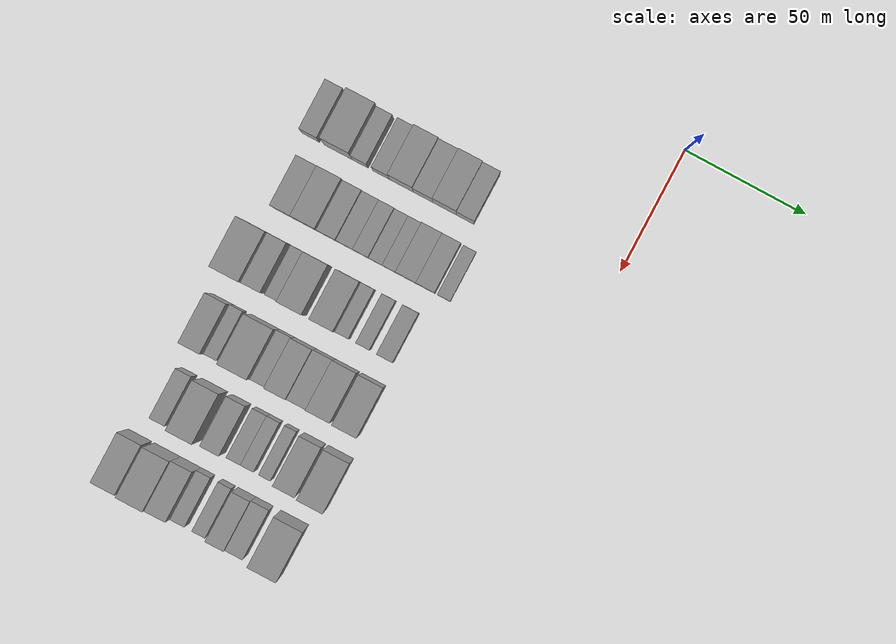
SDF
<sdf version="1.6">
 <world name="default">
  <model name="building_42">
   <static>1</static>
   <pose>50.0000 -122.4962 0 0.000000 0.000000 0.000000</pose>
   <link name="link">
    <pose>0 0 7.50 0 0 0</pose>
    <collision name="collision"><geometry><box><size>20.0000 7.1534 15.0000</size></box></geometry></collision>
    <visual name="visual">
     <cast_shadows>0</cast_shadows>
     <geometry><box><size>20.0000 7.1534 15.0000</size></box></geometry>
     <material>
      <script>
       <uri>model://grey_wall/materials/scripts</uri>
       <uri>model://grey_wall/materials/textures</uri>
       <name>vrc/grey_wall</name>
      </script>
     </material>
    </visual>
   </link>
  </model>
  <model name="building_43">
   <static>1</static>
   <pose>50.0000 -111.1496 0 0.000000 0.000000 0.000000</pose>
   <link name="link">
    <pose>0 0 12.00 0 0 0</pose>
    <collision name="collision"><geometry><box><size>20.0000 11.5397 24.0000</size></box></geometry></collision>
    <visual name="visual">
     <cast_shadows>0</cast_shadows>
     <geometry><box><size>20.0000 11.5397 24.0000</size></box></geometry>
     <material>
      <script>
       <uri>model://grey_wall/materials/scripts</uri>
       <uri>model://grey_wall/materials/textures</uri>
       <name>vrc/grey_wall</name>
      </script>
     </material>
    </visual>
   </link>
  </model>
  <model name="building_44">
   <static>1</static>
   <pose>50.0000 -102.1287 0 0.000000 0.000000 0.000000</pose>
   <link name="link">
    <pose>0 0 7.50 0 0 0</pose>
    <collision name="collision"><geometry><box><size>20.0000 6.5022 15.0000</size></box></geometry></collision>
    <visual name="visual">
     <cast_shadows>0</cast_shadows>
     <geometry><box><size>20.0000 6.5022 15.0000</size></box></geometry>
     <material>
      <script>
       <uri>model://grey_wall/materials/scripts</uri>
       <uri>model://grey_wall/materials/textures</uri>
       <name>vrc/grey_wall</name>
      </script>
     </material>
    </visual>
   </link>
  </model>
  <model name="building_45">
   <static>1</static>
   <pose>50.0000 -93.5026 0 0.000000 0.000000 0.000000</pose>
   <link name="link">
    <pose>0 0 7.50 0 0 0</pose>
    <collision name="collision"><geometry><box><size>20.0000 6.7500 15.0000</size></box></geometry></collision>
    <visual name="visual">
     <cast_shadows>0</cast_shadows>
     <geometry><box><size>20.0000 6.7500 15.0000</size></box></geometry>
     <material>
      <script>
       <uri>model://grey_wall/materials/scripts</uri>
       <uri>model://grey_wall/materials/textures</uri>
       <name>vrc/grey_wall</name>
      </script>
     </material>
    </visual>
   </link>
  </model>
  <model name="building_46">
   <static>1</static>
   <pose>50.0000 -85.1663 0 0.000000 0.000000 0.000000</pose>
   <link name="link">
    <pose>0 0 10.50 0 0 0</pose>
    <collision name="collision"><geometry><box><size>20.0000 9.9225 21.0000</size></box></geometry></collision>
    <visual name="visual">
     <cast_shadows>0</cast_shadows>
     <geometry><box><size>20.0000 9.9225 21.0000</size></box></geometry>
     <material>
      <script>
       <uri>model://grey_wall/materials/scripts</uri>
       <uri>model://grey_wall/materials/textures</uri>
       <name>vrc/grey_wall</name>
      </script>
     </material>
    </visual>
   </link>
  </model>
  <model name="building_47">
   <static>1</static>
   <pose>50.0000 -76.1934 0 0.000000 0.000000 0.000000</pose>
   <link name="link">
    <pose>0 0 9.00 0 0 0</pose>
    <collision name="collision"><geometry><box><size>20.0000 8.0234 18.0000</size></box></geometry></collision>
    <visual name="visual">
     <cast_shadows>0</cast_shadows>
     <geometry><box><size>20.0000 8.0234 18.0000</size></box></geometry>
     <material>
      <script>
       <uri>model://grey_wall/materials/scripts</uri>
       <uri>model://grey_wall/materials/textures</uri>
       <name>vrc/grey_wall</name>
      </script>
     </material>
    </visual>
   </link>
  </model>
  <model name="building_48">
   <static>1</static>
   <pose>50.0000 -67.3247 0 0.000000 0.000000 0.000000</pose>
   <link name="link">
    <pose>0 0 10.50 0 0 0</pose>
    <collision name="collision"><geometry><box><size>20.0000 9.7140 21.0000</size></box></geometry></collision>
    <visual name="visual">
     <cast_shadows>0</cast_shadows>
     <geometry><box><size>20.0000 9.7140 21.0000</size></box></geometry>
     <material>
      <script>
       <uri>model://grey_wall/materials/scripts</uri>
       <uri>model://grey_wall/materials/textures</uri>
       <name>vrc/grey_wall</name>
      </script>
     </material>
    </visual>
   </link>
  </model>
  <model name="building_49">
   <static>1</static>
   <pose>50.0000 -58.8487 0 0.000000 0.000000 0.000000</pose>
   <link name="link">
    <pose>0 0 9.00 0 0 0</pose>
    <collision name="collision"><geometry><box><size>20.0000 7.2380 18.0000</size></box></geometry></collision>
    <visual name="visual">
     <cast_shadows>0</cast_shadows>
     <geometry><box><size>20.0000 7.2380 18.0000</size></box></geometry>
     <material>
      <script>
       <uri>model://grey_wall/materials/scripts</uri>
       <uri>model://grey_wall/materials/textures</uri>
       <name>vrc/grey_wall</name>
      </script>
     </material>
    </visual>
   </link>
  </model>
  <model name="building_156">
   <static>1</static>
   <pose>79.0000 -117.4468 0 0.000000 0.000000 0.000000</pose>
   <link name="link">
    <pose>0 0 10.50 0 0 0</pose>
    <collision name="collision"><geometry><box><size>20.0000 8.5182 21.0000</size></box></geometry></collision>
    <visual name="visual">
     <cast_shadows>0</cast_shadows>
     <geometry><box><size>20.0000 8.5182 21.0000</size></box></geometry>
     <material>
      <script>
       <uri>model://grey_wall/materials/scripts</uri>
       <uri>model://grey_wall/materials/textures</uri>
       <name>vrc/grey_wall</name>
      </script>
     </material>
    </visual>
   </link>
  </model>
  <model name="building_157">
   <static>1</static>
   <pose>79.0000 -108.2829 0 0.000000 0.000000 0.000000</pose>
   <link name="link">
    <pose>0 0 12.00 0 0 0</pose>
    <collision name="collision"><geometry><box><size>20.0000 9.8094 24.0000</size></box></geometry></collision>
    <visual name="visual">
     <cast_shadows>0</cast_shadows>
     <geometry><box><size>20.0000 9.8094 24.0000</size></box></geometry>
     <material>
      <script>
       <uri>model://grey_wall/materials/scripts</uri>
       <uri>model://grey_wall/materials/textures</uri>
       <name>vrc/grey_wall</name>
      </script>
     </material>
    </visual>
   </link>
  </model>
  <model name="building_158">
   <static>1</static>
   <pose>79.0000 -99.5708 0 0.000000 0.000000 0.000000</pose>
   <link name="link">
    <pose>0 0 9.00 0 0 0</pose>
    <collision name="collision"><geometry><box><size>20.0000 7.6148 18.0000</size></box></geometry></collision>
    <visual name="visual">
     <cast_shadows>0</cast_shadows>
     <geometry><box><size>20.0000 7.6148 18.0000</size></box></geometry>
     <material>
      <script>
       <uri>model://grey_wall/materials/scripts</uri>
       <uri>model://grey_wall/materials/textures</uri>
       <name>vrc/grey_wall</name>
      </script>
     </material>
    </visual>
   </link>
  </model>
  <model name="building_159">
   <static>1</static>
   <pose>79.0000 -92.3816 0 0.000000 0.000000 0.000000</pose>
   <link name="link">
    <pose>0 0 7.50 0 0 0</pose>
    <collision name="collision"><geometry><box><size>20.0000 6.7636 15.0000</size></box></geometry></collision>
    <visual name="visual">
     <cast_shadows>0</cast_shadows>
     <geometry><box><size>20.0000 6.7636 15.0000</size></box></geometry>
     <material>
      <script>
       <uri>model://grey_wall/materials/scripts</uri>
       <uri>model://grey_wall/materials/textures</uri>
       <name>vrc/grey_wall</name>
      </script>
     </material>
    </visual>
   </link>
  </model>
  <model name="building_160">
   <static>1</static>
   <pose>79.0000 -85.8796 0 0.000000 0.000000 0.000000</pose>
   <link name="link">
    <pose>0 0 7.50 0 0 0</pose>
    <collision name="collision"><geometry><box><size>20.0000 6.2403 15.0000</size></box></geometry></collision>
    <visual name="visual">
     <cast_shadows>0</cast_shadows>
     <geometry><box><size>20.0000 6.2403 15.0000</size></box></geometry>
     <material>
      <script>
       <uri>model://grey_wall/materials/scripts</uri>
       <uri>model://grey_wall/materials/textures</uri>
       <name>vrc/grey_wall</name>
      </script>
     </material>
    </visual>
   </link>
  </model>
  <model name="building_161">
   <static>1</static>
   <pose>79.0000 -79.9926 0 0.000000 0.000000 0.000000</pose>
   <link name="link">
    <pose>0 0 6.00 0 0 0</pose>
    <collision name="collision"><geometry><box><size>20.0000 5.5337 12.0000</size></box></geometry></collision>
    <visual name="visual">
     <cast_shadows>0</cast_shadows>
     <geometry><box><size>20.0000 5.5337 12.0000</size></box></geometry>
     <material>
      <script>
       <uri>model://grey_wall/materials/scripts</uri>
       <uri>model://grey_wall/materials/textures</uri>
       <name>vrc/grey_wall</name>
      </script>
     </material>
    </visual>
   </link>
  </model>
  <model name="building_162">
   <static>1</static>
   <pose>79.0000 -74.4149 0 0.000000 0.000000 0.000000</pose>
   <link name="link">
    <pose>0 0 6.00 0 0 0</pose>
    <collision name="collision"><geometry><box><size>20.0000 5.6218 12.0000</size></box></geometry></collision>
    <visual name="visual">
     <cast_shadows>0</cast_shadows>
     <geometry><box><size>20.0000 5.6218 12.0000</size></box></geometry>
     <material>
      <script>
       <uri>model://grey_wall/materials/scripts</uri>
       <uri>model://grey_wall/materials/textures</uri>
       <name>vrc/grey_wall</name>
      </script>
     </material>
    </visual>
   </link>
  </model>
  <model name="building_163">
   <static>1</static>
   <pose>79.0000 -67.4967 0 0.000000 0.000000 0.000000</pose>
   <link name="link">
    <pose>0 0 9.00 0 0 0</pose>
    <collision name="collision"><geometry><box><size>20.0000 8.2145 18.0000</size></box></geometry></collision>
    <visual name="visual">
     <cast_shadows>0</cast_shadows>
     <geometry><box><size>20.0000 8.2145 18.0000</size></box></geometry>
     <material>
      <script>
       <uri>model://grey_wall/materials/scripts</uri>
       <uri>model://grey_wall/materials/textures</uri>
       <name>vrc/grey_wall</name>
      </script>
     </material>
    </visual>
   </link>
  </model>
  <model name="building_164">
   <static>1</static>
   <pose>79.0000 -59.6113 0 0.000000 0.000000 0.000000</pose>
   <link name="link">
    <pose>0 0 9.00 0 0 0</pose>
    <collision name="collision"><geometry><box><size>20.0000 7.5562 18.0000</size></box></geometry></collision>
    <visual name="visual">
     <cast_shadows>0</cast_shadows>
     <geometry><box><size>20.0000 7.5562 18.0000</size></box></geometry>
     <material>
      <script>
       <uri>model://grey_wall/materials/scripts</uri>
       <uri>model://grey_wall/materials/textures</uri>
       <name>vrc/grey_wall</name>
      </script>
     </material>
    </visual>
   </link>
  </model>
  <model name="building_165">
   <static>1</static>
   <pose>79.0000 -52.2043 0 0.000000 0.000000 0.000000</pose>
   <link name="link">
    <pose>0 0 6.00 0 0 0</pose>
    <collision name="collision"><geometry><box><size>20.0000 5.2579 12.0000</size></box></geometry></collision>
    <visual name="visual">
     <cast_shadows>0</cast_shadows>
     <geometry><box><size>20.0000 5.2579 12.0000</size></box></geometry>
     <material>
      <script>
       <uri>model://grey_wall/materials/scripts</uri>
       <uri>model://grey_wall/materials/textures</uri>
       <name>vrc/grey_wall</name>
      </script>
     </material>
    </visual>
   </link>
  </model>
  <model name="building_273">
   <static>1</static>
   <pose>108.0000 -124.1123 0 0.000000 0.000000 0.000000</pose>
   <link name="link">
    <pose>0 0 12.00 0 0 0</pose>
    <collision name="collision"><geometry><box><size>20.0000 11.6962 24.0000</size></box></geometry></collision>
    <visual name="visual">
     <cast_shadows>0</cast_shadows>
     <geometry><box><size>20.0000 11.6962 24.0000</size></box></geometry>
     <material>
      <script>
       <uri>model://grey_wall/materials/scripts</uri>
       <uri>model://grey_wall/materials/textures</uri>
       <name>vrc/grey_wall</name>
      </script>
     </material>
    </visual>
   </link>
  </model>
  <model name="building_274">
   <static>1</static>
   <pose>108.0000 -114.3549 0 0.000000 0.000000 0.000000</pose>
   <link name="link">
    <pose>0 0 9.00 0 0 0</pose>
    <collision name="collision"><geometry><box><size>20.0000 7.8185 18.0000</size></box></geometry></collision>
    <visual name="visual">
     <cast_shadows>0</cast_shadows>
     <geometry><box><size>20.0000 7.8185 18.0000</size></box></geometry>
     <material>
      <script>
       <uri>model://grey_wall/materials/scripts</uri>
       <uri>model://grey_wall/materials/textures</uri>
       <name>vrc/grey_wall</name>
      </script>
     </material>
    </visual>
   </link>
  </model>
  <model name="building_275">
   <static>1</static>
   <pose>108.0000 -106.5390 0 0.000000 0.000000 0.000000</pose>
   <link name="link">
    <pose>0 0 6.00 0 0 0</pose>
    <collision name="collision"><geometry><box><size>20.0000 5.8134 12.0000</size></box></geometry></collision>
    <visual name="visual">
     <cast_shadows>0</cast_shadows>
     <geometry><box><size>20.0000 5.8134 12.0000</size></box></geometry>
     <material>
      <script>
       <uri>model://grey_wall/materials/scripts</uri>
       <uri>model://grey_wall/materials/textures</uri>
       <name>vrc/grey_wall</name>
      </script>
     </material>
    </visual>
   </link>
  </model>
  <model name="building_276">
   <static>1</static>
   <pose>108.0000 -98.6018 0 0.000000 0.000000 0.000000</pose>
   <link name="link">
    <pose>0 0 10.50 0 0 0</pose>
    <collision name="collision"><geometry><box><size>20.0000 10.0610 21.0000</size></box></geometry></collision>
    <visual name="visual">
     <cast_shadows>0</cast_shadows>
     <geometry><box><size>20.0000 10.0610 21.0000</size></box></geometry>
     <material>
      <script>
       <uri>model://grey_wall/materials/scripts</uri>
       <uri>model://grey_wall/materials/textures</uri>
       <name>vrc/grey_wall</name>
      </script>
     </material>
    </visual>
   </link>
  </model>
  <model name="building_277">
   <static>1</static>
   <pose>108.0000 -85.7840 0 0.000000 0.000000 0.000000</pose>
   <link name="link">
    <pose>0 0 10.50 0 0 0</pose>
    <collision name="collision"><geometry><box><size>20.0000 9.5745 21.0000</size></box></geometry></collision>
    <visual name="visual">
     <cast_shadows>0</cast_shadows>
     <geometry><box><size>20.0000 9.5745 21.0000</size></box></geometry>
     <material>
      <script>
       <uri>model://grey_wall/materials/scripts</uri>
       <uri>model://grey_wall/materials/textures</uri>
       <name>vrc/grey_wall</name>
      </script>
     </material>
    </visual>
   </link>
  </model>
  <model name="building_278">
   <static>1</static>
   <pose>108.0000 -78.2578 0 0.000000 0.000000 0.000000</pose>
   <link name="link">
    <pose>0 0 6.00 0 0 0</pose>
    <collision name="collision"><geometry><box><size>20.0000 5.4779 12.0000</size></box></geometry></collision>
    <visual name="visual">
     <cast_shadows>0</cast_shadows>
     <geometry><box><size>20.0000 5.4779 12.0000</size></box></geometry>
     <material>
      <script>
       <uri>model://grey_wall/materials/scripts</uri>
       <uri>model://grey_wall/materials/textures</uri>
       <name>vrc/grey_wall</name>
      </script>
     </material>
    </visual>
   </link>
  </model>
  <model name="building_279">
   <static>1</static>
   <pose>108.0000 -69.7310 0 0.000000 0.000000 0.000000</pose>
   <link name="link">
    <pose>0 0 6.00 0 0 0</pose>
    <collision name="collision"><geometry><box><size>20.0000 5.5758 12.0000</size></box></geometry></collision>
    <visual name="visual">
     <cast_shadows>0</cast_shadows>
     <geometry><box><size>20.0000 5.5758 12.0000</size></box></geometry>
     <material>
      <script>
       <uri>model://grey_wall/materials/scripts</uri>
       <uri>model://grey_wall/materials/textures</uri>
       <name>vrc/grey_wall</name>
      </script>
     </material>
    </visual>
   </link>
  </model>
  <model name="building_280">
   <static>1</static>
   <pose>108.0000 -60.6845 0 0.000000 0.000000 0.000000</pose>
   <link name="link">
    <pose>0 0 7.50 0 0 0</pose>
    <collision name="collision"><geometry><box><size>20.0000 6.5170 15.0000</size></box></geometry></collision>
    <visual name="visual">
     <cast_shadows>0</cast_shadows>
     <geometry><box><size>20.0000 6.5170 15.0000</size></box></geometry>
     <material>
      <script>
       <uri>model://grey_wall/materials/scripts</uri>
       <uri>model://grey_wall/materials/textures</uri>
       <name>vrc/grey_wall</name>
      </script>
     </material>
    </visual>
   </link>
  </model>
  <model name="building_381">
   <static>1</static>
   <pose>137.0000 -123.0594 0 0.000000 0.000000 0.000000</pose>
   <link name="link">
    <pose>0 0 10.50 0 0 0</pose>
    <collision name="collision"><geometry><box><size>20.0000 8.6366 21.0000</size></box></geometry></collision>
    <visual name="visual">
     <cast_shadows>0</cast_shadows>
     <geometry><box><size>20.0000 8.6366 21.0000</size></box></geometry>
     <material>
      <script>
       <uri>model://grey_wall/materials/scripts</uri>
       <uri>model://grey_wall/materials/textures</uri>
       <name>vrc/grey_wall</name>
      </script>
     </material>
    </visual>
   </link>
  </model>
  <model name="building_382">
   <static>1</static>
   <pose>137.0000 -116.1046 0 0.000000 0.000000 0.000000</pose>
   <link name="link">
    <pose>0 0 6.00 0 0 0</pose>
    <collision name="collision"><geometry><box><size>20.0000 5.2730 12.0000</size></box></geometry></collision>
    <visual name="visual">
     <cast_shadows>0</cast_shadows>
     <geometry><box><size>20.0000 5.2730 12.0000</size></box></geometry>
     <material>
      <script>
       <uri>model://grey_wall/materials/scripts</uri>
       <uri>model://grey_wall/materials/textures</uri>
       <name>vrc/grey_wall</name>
      </script>
     </material>
    </visual>
   </link>
  </model>
  <model name="building_383">
   <static>1</static>
   <pose>137.0000 -105.5075 0 0.000000 0.000000 0.000000</pose>
   <link name="link">
    <pose>0 0 12.00 0 0 0</pose>
    <collision name="collision"><geometry><box><size>20.0000 11.9210 24.0000</size></box></geometry></collision>
    <visual name="visual">
     <cast_shadows>0</cast_shadows>
     <geometry><box><size>20.0000 11.9210 24.0000</size></box></geometry>
     <material>
      <script>
       <uri>model://grey_wall/materials/scripts</uri>
       <uri>model://grey_wall/materials/textures</uri>
       <name>vrc/grey_wall</name>
      </script>
     </material>
    </visual>
   </link>
  </model>
  <model name="building_384">
   <static>1</static>
   <pose>137.0000 -96.3805 0 0.000000 0.000000 0.000000</pose>
   <link name="link">
    <pose>0 0 7.50 0 0 0</pose>
    <collision name="collision"><geometry><box><size>20.0000 6.3331 15.0000</size></box></geometry></collision>
    <visual name="visual">
     <cast_shadows>0</cast_shadows>
     <geometry><box><size>20.0000 6.3331 15.0000</size></box></geometry>
     <material>
      <script>
       <uri>model://grey_wall/materials/scripts</uri>
       <uri>model://grey_wall/materials/textures</uri>
       <name>vrc/grey_wall</name>
      </script>
     </material>
    </visual>
   </link>
  </model>
  <model name="building_385">
   <static>1</static>
   <pose>137.0000 -88.8570 0 0.000000 0.000000 0.000000</pose>
   <link name="link">
    <pose>0 0 10.50 0 0 0</pose>
    <collision name="collision"><geometry><box><size>20.0000 8.7140 21.0000</size></box></geometry></collision>
    <visual name="visual">
     <cast_shadows>0</cast_shadows>
     <geometry><box><size>20.0000 8.7140 21.0000</size></box></geometry>
     <material>
      <script>
       <uri>model://grey_wall/materials/scripts</uri>
       <uri>model://grey_wall/materials/textures</uri>
       <name>vrc/grey_wall</name>
      </script>
     </material>
    </visual>
   </link>
  </model>
  <model name="building_386">
   <static>1</static>
   <pose>137.0000 -80.5455 0 0.000000 0.000000 0.000000</pose>
   <link name="link">
    <pose>0 0 9.00 0 0 0</pose>
    <collision name="collision"><geometry><box><size>20.0000 7.9091 18.0000</size></box></geometry></collision>
    <visual name="visual">
     <cast_shadows>0</cast_shadows>
     <geometry><box><size>20.0000 7.9091 18.0000</size></box></geometry>
     <material>
      <script>
       <uri>model://grey_wall/materials/scripts</uri>
       <uri>model://grey_wall/materials/textures</uri>
       <name>vrc/grey_wall</name>
      </script>
     </material>
    </visual>
   </link>
  </model>
  <model name="building_387">
   <static>1</static>
   <pose>137.0000 -71.6994 0 0.000000 0.000000 0.000000</pose>
   <link name="link">
    <pose>0 0 10.50 0 0 0</pose>
    <collision name="collision"><geometry><box><size>20.0000 9.7831 21.0000</size></box></geometry></collision>
    <visual name="visual">
     <cast_shadows>0</cast_shadows>
     <geometry><box><size>20.0000 9.7831 21.0000</size></box></geometry>
     <material>
      <script>
       <uri>model://grey_wall/materials/scripts</uri>
       <uri>model://grey_wall/materials/textures</uri>
       <name>vrc/grey_wall</name>
      </script>
     </material>
    </visual>
   </link>
  </model>
  <model name="building_388">
   <static>1</static>
   <pose>137.0000 -60.8563 0 0.000000 0.000000 0.000000</pose>
   <link name="link">
    <pose>0 0 12.00 0 0 0</pose>
    <collision name="collision"><geometry><box><size>20.0000 9.9030 24.0000</size></box></geometry></collision>
    <visual name="visual">
     <cast_shadows>0</cast_shadows>
     <geometry><box><size>20.0000 9.9030 24.0000</size></box></geometry>
     <material>
      <script>
       <uri>model://grey_wall/materials/scripts</uri>
       <uri>model://grey_wall/materials/textures</uri>
       <name>vrc/grey_wall</name>
      </script>
     </material>
    </visual>
   </link>
  </model>
  <model name="building_498">
   <static>1</static>
   <pose>166.0000 -121.5795 0 0.000000 0.000000 0.000000</pose>
   <link name="link">
    <pose>0 0 7.50 0 0 0</pose>
    <collision name="collision"><geometry><box><size>20.0000 6.3511 15.0000</size></box></geometry></collision>
    <visual name="visual">
     <cast_shadows>0</cast_shadows>
     <geometry><box><size>20.0000 6.3511 15.0000</size></box></geometry>
     <material>
      <script>
       <uri>model://grey_wall/materials/scripts</uri>
       <uri>model://grey_wall/materials/textures</uri>
       <name>vrc/grey_wall</name>
      </script>
     </material>
    </visual>
   </link>
  </model>
  <model name="building_499">
   <static>1</static>
   <pose>166.0000 -111.1341 0 0.000000 0.000000 0.000000</pose>
   <link name="link">
    <pose>0 0 12.00 0 0 0</pose>
    <collision name="collision"><geometry><box><size>20.0000 10.5397 24.0000</size></box></geometry></collision>
    <visual name="visual">
     <cast_shadows>0</cast_shadows>
     <geometry><box><size>20.0000 10.5397 24.0000</size></box></geometry>
     <material>
      <script>
       <uri>model://grey_wall/materials/scripts</uri>
       <uri>model://grey_wall/materials/textures</uri>
       <name>vrc/grey_wall</name>
      </script>
     </material>
    </visual>
   </link>
  </model>
  <model name="building_500">
   <static>1</static>
   <pose>166.0000 -100.0213 0 0.000000 0.000000 0.000000</pose>
   <link name="link">
    <pose>0 0 9.00 0 0 0</pose>
    <collision name="collision"><geometry><box><size>20.0000 7.6859 18.0000</size></box></geometry></collision>
    <visual name="visual">
     <cast_shadows>0</cast_shadows>
     <geometry><box><size>20.0000 7.6859 18.0000</size></box></geometry>
     <material>
      <script>
       <uri>model://grey_wall/materials/scripts</uri>
       <uri>model://grey_wall/materials/textures</uri>
       <name>vrc/grey_wall</name>
      </script>
     </material>
    </visual>
   </link>
  </model>
  <model name="building_501">
   <static>1</static>
   <pose>166.0000 -91.2899 0 0.000000 0.000000 0.000000</pose>
   <link name="link">
    <pose>0 0 6.00 0 0 0</pose>
    <collision name="collision"><geometry><box><size>20.0000 5.7768 12.0000</size></box></geometry></collision>
    <visual name="visual">
     <cast_shadows>0</cast_shadows>
     <geometry><box><size>20.0000 5.7768 12.0000</size></box></geometry>
     <material>
      <script>
       <uri>model://grey_wall/materials/scripts</uri>
       <uri>model://grey_wall/materials/textures</uri>
       <name>vrc/grey_wall</name>
      </script>
     </material>
    </visual>
   </link>
  </model>
  <model name="building_502">
   <static>1</static>
   <pose>166.0000 -85.7360 0 0.000000 0.000000 0.000000</pose>
   <link name="link">
    <pose>0 0 6.00 0 0 0</pose>
    <collision name="collision"><geometry><box><size>20.0000 5.3309 12.0000</size></box></geometry></collision>
    <visual name="visual">
     <cast_shadows>0</cast_shadows>
     <geometry><box><size>20.0000 5.3309 12.0000</size></box></geometry>
     <material>
      <script>
       <uri>model://grey_wall/materials/scripts</uri>
       <uri>model://grey_wall/materials/textures</uri>
       <name>vrc/grey_wall</name>
      </script>
     </material>
    </visual>
   </link>
  </model>
  <model name="building_503">
   <static>1</static>
   <pose>166.0000 -78.6629 0 0.000000 0.000000 0.000000</pose>
   <link name="link">
    <pose>0 0 6.00 0 0 0</pose>
    <collision name="collision"><geometry><box><size>20.0000 4.8155 12.0000</size></box></geometry></collision>
    <visual name="visual">
     <cast_shadows>0</cast_shadows>
     <geometry><box><size>20.0000 4.8155 12.0000</size></box></geometry>
     <material>
      <script>
       <uri>model://grey_wall/materials/scripts</uri>
       <uri>model://grey_wall/materials/textures</uri>
       <name>vrc/grey_wall</name>
      </script>
     </material>
    </visual>
   </link>
  </model>
  <model name="building_504">
   <static>1</static>
   <pose>166.0000 -69.8084 0 0.000000 0.000000 0.000000</pose>
   <link name="link">
    <pose>0 0 10.50 0 0 0</pose>
    <collision name="collision"><geometry><box><size>20.0000 8.8934 21.0000</size></box></geometry></collision>
    <visual name="visual">
     <cast_shadows>0</cast_shadows>
     <geometry><box><size>20.0000 8.8934 21.0000</size></box></geometry>
     <material>
      <script>
       <uri>model://grey_wall/materials/scripts</uri>
       <uri>model://grey_wall/materials/textures</uri>
       <name>vrc/grey_wall</name>
      </script>
     </material>
    </visual>
   </link>
  </model>
  <model name="building_505">
   <static>1</static>
   <pose>166.0000 -59.1086 0 0.000000 0.000000 0.000000</pose>
   <link name="link">
    <pose>0 0 12.00 0 0 0</pose>
    <collision name="collision"><geometry><box><size>20.0000 10.5062 24.0000</size></box></geometry></collision>
    <visual name="visual">
     <cast_shadows>0</cast_shadows>
     <geometry><box><size>20.0000 10.5062 24.0000</size></box></geometry>
     <material>
      <script>
       <uri>model://grey_wall/materials/scripts</uri>
       <uri>model://grey_wall/materials/textures</uri>
       <name>vrc/grey_wall</name>
      </script>
     </material>
    </visual>
   </link>
  </model>
  <model name="building_602">
   <static>1</static>
   <pose>195.0000 -126.7016 0 0.000000 0.000000 0.000000</pose>
   <link name="link">
    <pose>0 0 10.50 0 0 0</pose>
    <collision name="collision"><geometry><box><size>20.0000 9.7427 21.0000</size></box></geometry></collision>
    <visual name="visual">
     <cast_shadows>0</cast_shadows>
     <geometry><box><size>20.0000 9.7427 21.0000</size></box></geometry>
     <material>
      <script>
       <uri>model://grey_wall/materials/scripts</uri>
       <uri>model://grey_wall/materials/textures</uri>
       <name>vrc/grey_wall</name>
      </script>
     </material>
    </visual>
   </link>
  </model>
  <model name="building_603">
   <static>1</static>
   <pose>195.0000 -115.4334 0 0.000000 0.000000 0.000000</pose>
   <link name="link">
    <pose>0 0 12.00 0 0 0</pose>
    <collision name="collision"><geometry><box><size>20.0000 10.7937 24.0000</size></box></geometry></collision>
    <visual name="visual">
     <cast_shadows>0</cast_shadows>
     <geometry><box><size>20.0000 10.7937 24.0000</size></box></geometry>
     <material>
      <script>
       <uri>model://grey_wall/materials/scripts</uri>
       <uri>model://grey_wall/materials/textures</uri>
       <name>vrc/grey_wall</name>
      </script>
     </material>
    </visual>
   </link>
  </model>
  <model name="building_604">
   <static>1</static>
   <pose>195.0000 -105.7864 0 0.000000 0.000000 0.000000</pose>
   <link name="link">
    <pose>0 0 10.50 0 0 0</pose>
    <collision name="collision"><geometry><box><size>20.0000 8.5002 21.0000</size></box></geometry></collision>
    <visual name="visual">
     <cast_shadows>0</cast_shadows>
     <geometry><box><size>20.0000 8.5002 21.0000</size></box></geometry>
     <material>
      <script>
       <uri>model://grey_wall/materials/scripts</uri>
       <uri>model://grey_wall/materials/textures</uri>
       <name>vrc/grey_wall</name>
      </script>
     </material>
    </visual>
   </link>
  </model>
  <model name="building_605">
   <static>1</static>
   <pose>195.0000 -98.6003 0 0.000000 0.000000 0.000000</pose>
   <link name="link">
    <pose>0 0 6.00 0 0 0</pose>
    <collision name="collision"><geometry><box><size>20.0000 5.8722 12.0000</size></box></geometry></collision>
    <visual name="visual">
     <cast_shadows>0</cast_shadows>
     <geometry><box><size>20.0000 5.8722 12.0000</size></box></geometry>
     <material>
      <script>
       <uri>model://grey_wall/materials/scripts</uri>
       <uri>model://grey_wall/materials/textures</uri>
       <name>vrc/grey_wall</name>
      </script>
     </material>
    </visual>
   </link>
  </model>
  <model name="building_606">
   <static>1</static>
   <pose>195.0000 -89.9707 0 0.000000 0.000000 0.000000</pose>
   <link name="link">
    <pose>0 0 6.00 0 0 0</pose>
    <collision name="collision"><geometry><box><size>20.0000 5.3870 12.0000</size></box></geometry></collision>
    <visual name="visual">
     <cast_shadows>0</cast_shadows>
     <geometry><box><size>20.0000 5.3870 12.0000</size></box></geometry>
     <material>
      <script>
       <uri>model://grey_wall/materials/scripts</uri>
       <uri>model://grey_wall/materials/textures</uri>
       <name>vrc/grey_wall</name>
      </script>
     </material>
    </visual>
   </link>
  </model>
  <model name="building_607">
   <static>1</static>
   <pose>195.0000 -82.5493 0 0.000000 0.000000 0.000000</pose>
   <link name="link">
    <pose>0 0 9.00 0 0 0</pose>
    <collision name="collision"><geometry><box><size>20.0000 7.4559 18.0000</size></box></geometry></collision>
    <visual name="visual">
     <cast_shadows>0</cast_shadows>
     <geometry><box><size>20.0000 7.4559 18.0000</size></box></geometry>
     <material>
      <script>
       <uri>model://grey_wall/materials/scripts</uri>
       <uri>model://grey_wall/materials/textures</uri>
       <name>vrc/grey_wall</name>
      </script>
     </material>
    </visual>
   </link>
  </model>
  <model name="building_608">
   <static>1</static>
   <pose>195.0000 -75.2058 0 0.000000 0.000000 0.000000</pose>
   <link name="link">
    <pose>0 0 7.50 0 0 0</pose>
    <collision name="collision"><geometry><box><size>20.0000 7.2311 15.0000</size></box></geometry></collision>
    <visual name="visual">
     <cast_shadows>0</cast_shadows>
     <geometry><box><size>20.0000 7.2311 15.0000</size></box></geometry>
     <material>
      <script>
       <uri>model://grey_wall/materials/scripts</uri>
       <uri>model://grey_wall/materials/textures</uri>
       <name>vrc/grey_wall</name>
      </script>
     </material>
    </visual>
   </link>
  </model>
  <model name="building_609">
   <static>1</static>
   <pose>195.0000 -62.7969 0 0.000000 0.000000 0.000000</pose>
   <link name="link">
    <pose>0 0 12.00 0 0 0</pose>
    <collision name="collision"><geometry><box><size>20.0000 11.5867 24.0000</size></box></geometry></collision>
    <visual name="visual">
     <cast_shadows>0</cast_shadows>
     <geometry><box><size>20.0000 11.5867 24.0000</size></box></geometry>
     <material>
      <script>
       <uri>model://grey_wall/materials/scripts</uri>
       <uri>model://grey_wall/materials/textures</uri>
       <name>vrc/grey_wall</name>
      </script>
     </material>
    </visual>
   </link>
  </model>
 </world>
</sdf>
